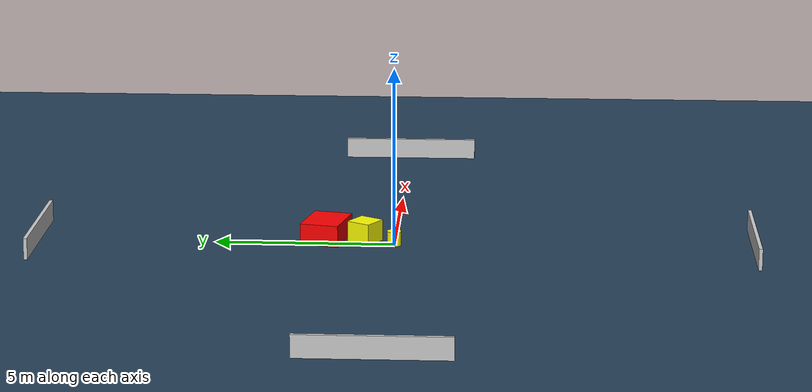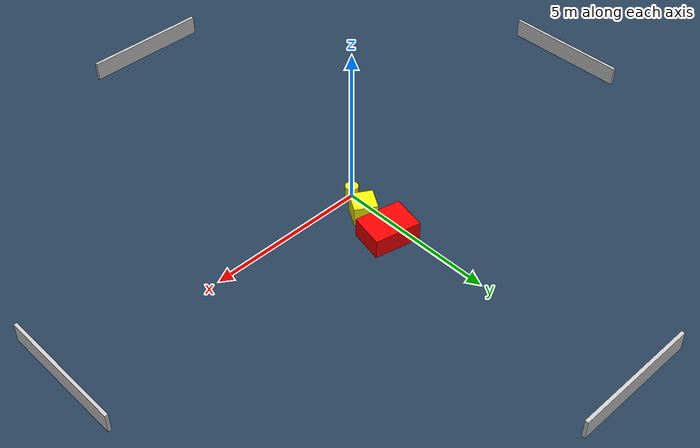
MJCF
<?xml version="1.0" ?>
<mujoco model="generated_environment">
  <option timestep="0.01" integrator="RK4" cone="elliptic"/>
  <default>
    <geom density="1"/>
  </default>
  <asset>
    <texture builtin="gradient" height="3072" name="skybox" rgb1="0.3 0.5 0.7" rgb2="0 0 0" type="skybox" width="512"/>
    <texture builtin="checker" height="300" name="groundplane" rgb1="0.2 0.3 0.4" rgb2="0.1 0.2 0.3" type="2d" width="300"/>
    <material name="groundplane" reflectance="0.2" texrepeat="5 5" texture="groundplane"/>
  </asset>
  <worldbody>
    <light dir="0 0 -1" directional="true" pos="0 0 1.5"/>
    <geom condim="3" friction="0.5 0.005 0.001" material="groundplane" name="floor" pos="0 0 0" size="0 0 0.05" type="plane"/>
    <body name="walls">
      <geom name="wall_1" condim="4" pos="-10.0 0.0 0.3" rgba="0.800000011920929 0.800000011920929 0.800000011920929 1.0" size="0.05 2.0 0.3" type="box"/>
      <geom name="wall_2" condim="4" pos="10.0 0.0 0.3" rgba="0.800000011920929 0.800000011920929 0.800000011920929 1.0" size="0.05 2.0 0.3" type="box"/>
      <geom name="wall_3" condim="4" pos="0.0 -10.0 0.3" rgba="0.800000011920929 0.800000011920929 0.800000011920929 1.0" size="2.0 0.05 0.3" type="box"/>
      <geom name="wall_4" condim="4" pos="0.0 10.0 0.3" rgba="0.800000011920929 0.800000011920929 0.800000011920929 1.0" size="2.0 0.05 0.3" type="box"/>
    </body>
    <body name="robot">
      <joint name="joint_x" type="slide" pos="0 0 0" axis="1 0 0"/>
      <joint name="joint_y" type="slide" pos="0 0 0" axis="0 1 0"/>
      <geom name="robot" type="cylinder" pos="0.0 0.0 0.2" size="0.2 0.2 0.0" mass="5.0" friction="1.0 0.005 0.0001" condim="4" rgba="1.0 1.0 0.0 1.0"/>
    </body>
    <body name="obstacle_1_movable">
      <geom name="obstacle_1_movable" condim="4" pos="0.3436804371354909 0.8331782730078802 0.3" euler="0 0 58.545281982478976" friction="0.0 0.005 0.001" rgba="1.0 1.0 0.0 1.0" size="0.357158940058159 0.35458775499559775 0.3" type="box" mass="0.1"/>
      <joint type="free"/>
    </body>
    <body name="obstacle_2_static">
      <geom name="obstacle_2_static" condim="4" pos="0.4695457481904077 1.9351269774185433 0.3" euler="0 0 347.6008509927268" friction="0.0 0.005 0.001" rgba="1.0 0.0 0.0 1.0" size="0.7246041310744871 0.5431159788683803 0.3" type="box"/>
    </body>
  </worldbody>
  <actuator>
    <motor name="actuator_x" joint="joint_x" gear="1" ctrlrange="-1 1"/>
    <motor name="actuator_y" joint="joint_y" gear="1" ctrlrange="-1 1"/>
  </actuator>
</mujoco>
